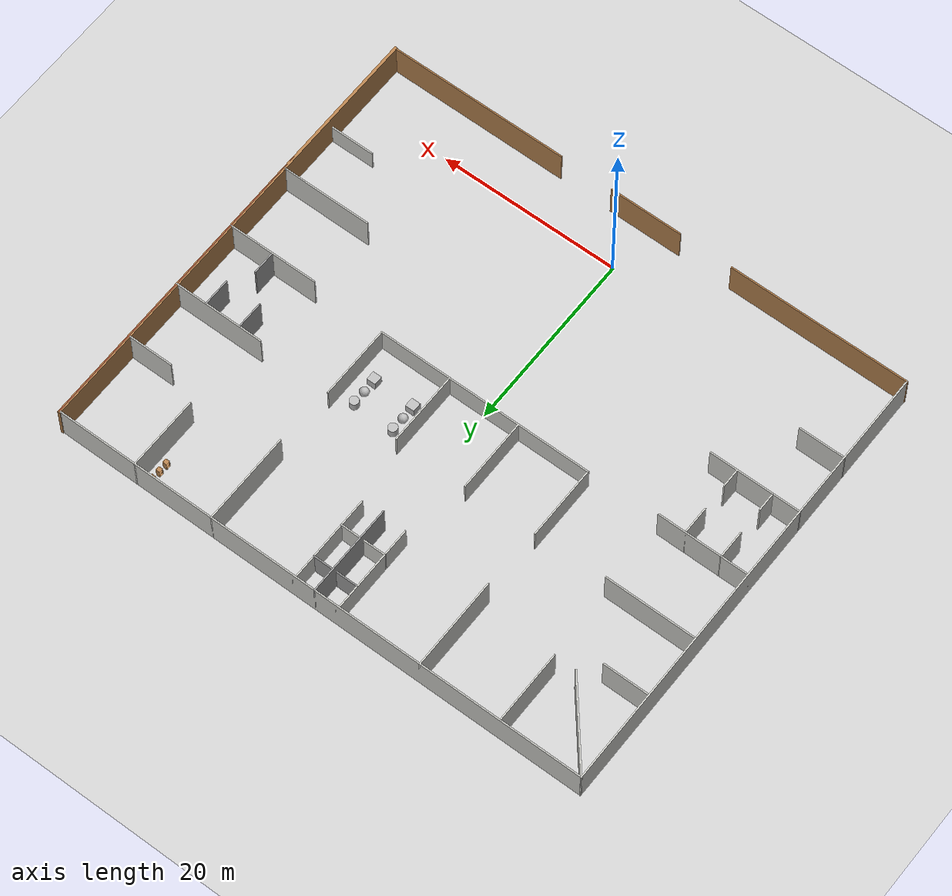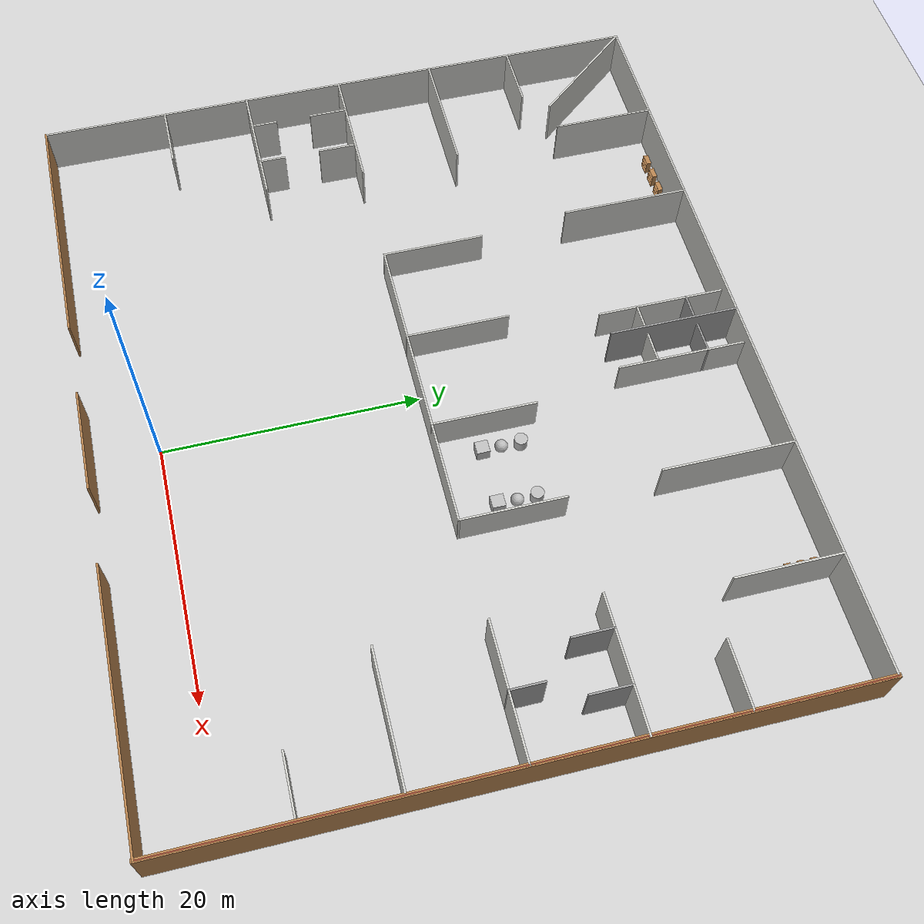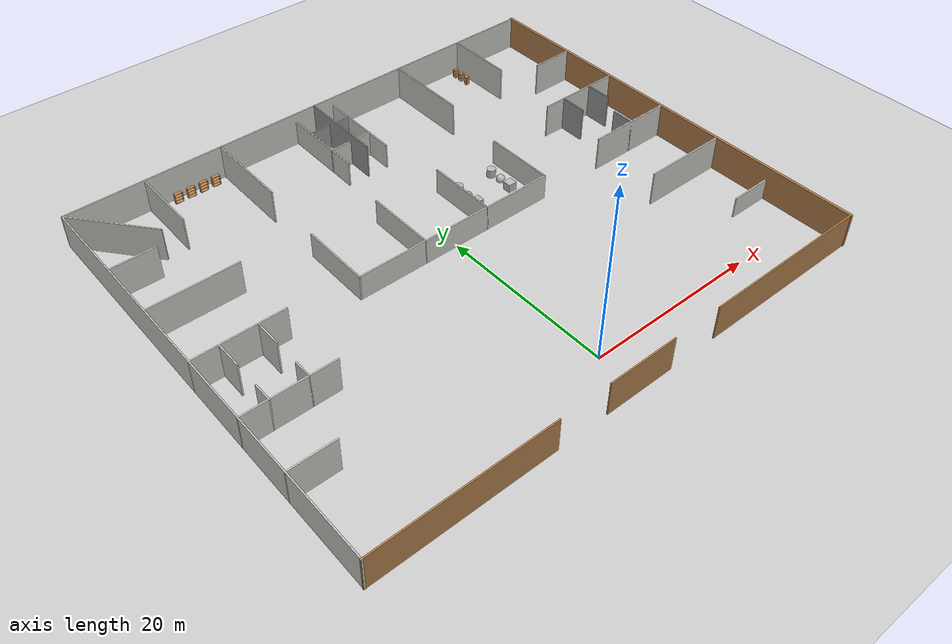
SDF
<sdf version="1.7">
 <world name="default">
  <model name="ground_plane">
   <static>1</static>
   <link name="link">
    <collision name="collision">
     <geometry><plane><normal>0 0 1</normal><size>100 100</size></plane></geometry>
     <surface>
      <contact><collide_bitmask>65535</collide_bitmask></contact>
      <friction><ode><mu>100</mu><mu2>50</mu2></ode></friction>
     </surface>
    </collision>
    <visual name="visual">
     <cast_shadows>0</cast_shadows>
     <geometry><plane><normal>0 0 1</normal><size>100 100</size></plane></geometry>
     <material>
      <script><uri>file://media/materials/scripts/gazebo.material</uri><name>Gazebo/Grey</name></script>
     </material>
    </visual>
   </link>
  </model>
  <model name="demo03">
   <pose>0 20 0 0 -0 0</pose>
   <link name="Wall_0">
    <collision name="Wall_0_Collision">
     <geometry><box><size>8.14 0.14 4</size></box></geometry>
     <pose>0 0 2 0 -0 0</pose>
    </collision>
    <visual name="Wall_0_Visual">
     <pose>0 0 2 0 -0 0</pose>
     <geometry><box><size>8.14 0.14 4</size></box></geometry>
     <material>
      <script><uri>file://media/materials/scripts/gazebo.material</uri><name>Gazebo/CeilingTiled</name></script>
      <ambient>1 1 1 1</ambient>
     </material>
     <meta><layer>0</layer></meta>
    </visual>
    <pose>-20.9847 20.9847 0 0 -0 -1.5708</pose>
   </link>
   <link name="Wall_12">
    <collision name="Wall_12_Collision">
     <geometry><box><size>10.15 0.15 3</size></box></geometry>
     <pose>0 0 1.5 0 -0 0</pose>
    </collision>
    <visual name="Wall_12_Visual">
     <pose>0 0 1.5 0 -0 0</pose>
     <geometry><box><size>10.15 0.15 3</size></box></geometry>
     <material>
      <script><uri>file://media/materials/scripts/gazebo.material</uri><name>Gazebo/CeilingTiled</name></script>
      <ambient>1 1 1 1</ambient>
     </material>
     <meta><layer>0</layer></meta>
    </visual>
    <pose>-2.48471 19.9847 0 0 -0 1.5708</pose>
   </link>
   <link name="Wall_14">
    <collision name="Wall_14_Collision">
     <geometry><box><size>10.15 0.15 3</size></box></geometry>
     <pose>0 0 1.5 0 -0 0</pose>
    </collision>
    <visual name="Wall_14_Visual">
     <pose>0 0 1.5 0 -0 0</pose>
     <geometry><box><size>10.15 0.15 3</size></box></geometry>
     <material>
      <script><uri>file://media/materials/scripts/gazebo.material</uri><name>Gazebo/CeilingTiled</name></script>
      <ambient>1 1 1 1</ambient>
     </material>
     <meta><layer>0</layer></meta>
    </visual>
    <pose>2.51529 19.9847 0 0 -0 1.5708</pose>
   </link>
   <link name="Wall_16">
    <collision name="Wall_16_Collision">
     <geometry><box><size>5.15 0.15 3</size></box></geometry>
     <pose>0 0 1.5 0 -0 0</pose>
    </collision>
    <visual name="Wall_16_Visual">
     <pose>0 0 1.5 0 -0 0</pose>
     <geometry><box><size>5.15 0.15 3</size></box></geometry>
     <material>
      <script><uri>file://media/materials/scripts/gazebo.material</uri><name>Gazebo/Grey</name></script>
      <ambient>1 1 1 1</ambient>
     </material>
     <meta><layer>0</layer></meta>
    </visual>
    <pose>0.015289 21.9847 0 0 -0 0</pose>
   </link>
   <link name="Wall_18">
    <collision name="Wall_18_Collision">
     <geometry><box><size>5.15 0.15 3</size></box></geometry>
     <pose>0 0 1.5 0 -0 0</pose>
    </collision>
    <visual name="Wall_18_Visual">
     <pose>0 0 1.5 0 -0 0</pose>
     <geometry><box><size>5.15 0.15 3</size></box></geometry>
     <material>
      <script><uri>file://media/materials/scripts/gazebo.material</uri><name>Gazebo/CeilingTiled</name></script>
      <ambient>1 1 1 1</ambient>
     </material>
     <meta><layer>0</layer></meta>
    </visual>
    <pose>0.015289 17.9847 0 0 -0 0</pose>
   </link>
   <link name="Wall_2">
    <collision name="Wall_2_Collision">
     <geometry><box><size>10.15 0.15 4</size></box></geometry>
     <pose>0 0 2 0 -0 0</pose>
    </collision>
    <visual name="Wall_2_Visual">
     <pose>0 0 2 0 -0 0</pose>
     <geometry><box><size>10.15 0.15 4</size></box></geometry>
     <material>
      <script><uri>file://media/materials/scripts/gazebo.material</uri><name>Gazebo/CeilingTiled</name></script>
      <ambient>1 1 1 1</ambient>
     </material>
     <meta><layer>0</layer></meta>
    </visual>
    <pose>-11.9847 19.9847 0 0 -0 -1.5708</pose>
   </link>
   <link name="Wall_20">
    <collision name="Wall_20_Collision">
     <geometry><box><size>5.15 0.15 4</size></box></geometry>
     <pose>0 0 2 0 -0 0</pose>
    </collision>
    <visual name="Wall_20_Visual">
     <pose>0 0 2 0 -0 0</pose>
     <geometry><box><size>5.15 0.15 4</size></box></geometry>
     <material>
      <script><uri>file://media/materials/scripts/gazebo.material</uri><name>Gazebo/CeilingTiled</name></script>
      <ambient>1 1 1 1</ambient>
     </material>
     <meta><layer>0</layer></meta>
    </visual>
    <pose>-27.4847 14.9847 0 0 -0 0</pose>
   </link>
   <link name="Wall_22">
    <collision name="Wall_22_Collision">
     <geometry><box><size>5.15 0.15 4</size></box></geometry>
     <pose>0 0 2 0 -0 0</pose>
    </collision>
    <visual name="Wall_22_Visual">
     <pose>0 0 2 0 -0 0</pose>
     <geometry><box><size>5.15 0.15 4</size></box></geometry>
     <material>
      <script><uri>file://media/materials/scripts/gazebo.material</uri><name>Gazebo/CeilingTiled</name></script>
      <ambient>1 1 1 1</ambient>
     </material>
     <meta><layer>0</layer></meta>
    </visual>
    <pose>27.5153 14.9847 0 0 -0 0</pose>
   </link>
   <link name="Wall_24">
    <collision name="Wall_24_Collision">
     <geometry><box><size>10.15 0.15 4</size></box></geometry>
     <pose>0 0 2 0 -0 0</pose>
    </collision>
    <visual name="Wall_24_Visual">
     <pose>0 0 2 0 -0 0</pose>
     <geometry><box><size>10.15 0.15 4</size></box></geometry>
     <material>
      <script><uri>file://media/materials/scripts/gazebo.material</uri><name>Gazebo/CeilingTiled</name></script>
      <ambient>1 1 1 1</ambient>
     </material>
     <meta><layer>0</layer></meta>
    </visual>
    <pose>-24.9847 7.98471 0 0 -0 0</pose>
   </link>
   <link name="Wall_26">
    <collision name="Wall_26_Collision">
     <geometry><box><size>10.15 0.15 4</size></box></geometry>
     <pose>0 0 2 0 -0 0</pose>
    </collision>
    <visual name="Wall_26_Visual">
     <pose>0 0 2 0 -0 0</pose>
     <geometry><box><size>10.15 0.15 4</size></box></geometry>
     <material>
      <script><uri>file://media/materials/scripts/gazebo.material</uri><name>Gazebo/CeilingTiled</name></script>
      <ambient>1 1 1 1</ambient>
     </material>
     <meta><layer>0</layer></meta>
    </visual>
    <pose>-24.9847 -0.015289 0 0 -0 0</pose>
   </link>
   <link name="Wall_28">
    <collision name="Wall_28_Collision">
     <geometry><box><size>10.15 0.15 4</size></box></geometry>
     <pose>0 0 2 0 -0 0</pose>
    </collision>
    <visual name="Wall_28_Visual">
     <pose>0 0 2 0 -0 0</pose>
     <geometry><box><size>10.15 0.15 4</size></box></geometry>
     <material>
      <script><uri>file://media/materials/scripts/gazebo.material</uri><name>Gazebo/CeilingTiled</name></script>
      <ambient>1 1 1 1</ambient>
     </material>
     <meta><layer>0</layer></meta>
    </visual>
    <pose>-24.9847 -8.01529 0 0 -0 0</pose>
   </link>
   <link name="Wall_30">
    <collision name="Wall_30_Collision">
     <geometry><box><size>5.15 0.15 4</size></box></geometry>
     <pose>0 0 2 0 -0 0</pose>
    </collision>
    <visual name="Wall_30_Visual">
     <pose>0 0 2 0 -0 0</pose>
     <geometry><box><size>5.15 0.15 4</size></box></geometry>
     <material>
      <script><uri>file://media/materials/scripts/gazebo.material</uri><name>Gazebo/CeilingTiled</name></script>
      <ambient>1 1 1 1</ambient>
     </material>
     <meta><layer>0</layer></meta>
    </visual>
    <pose>-27.4847 -15.0153 0 0 -0 0</pose>
   </link>
   <link name="Wall_32">
    <collision name="Wall_32_Collision">
     <geometry><box><size>10.15 0.15 4</size></box></geometry>
     <pose>0 0 2 0 -0 0</pose>
    </collision>
    <visual name="Wall_32_Visual">
     <pose>0 0 2 0 -0 0</pose>
     <geometry><box><size>10.15 0.15 4</size></box></geometry>
     <material>
      <script><uri>file://media/materials/scripts/gazebo.material</uri><name>Gazebo/CeilingTiled</name></script>
      <ambient>1 1 1 1</ambient>
     </material>
     <meta><layer>0</layer></meta>
    </visual>
    <pose>25.0153 7.98471 0 0 -0 0</pose>
   </link>
   <link name="Wall_34">
    <collision name="Wall_34_Collision">
     <geometry><box><size>10.15 0.15 4</size></box></geometry>
     <pose>0 0 2 0 -0 0</pose>
    </collision>
    <visual name="Wall_34_Visual">
     <pose>0 0 2 0 -0 0</pose>
     <geometry><box><size>10.15 0.15 4</size></box></geometry>
     <material>
      <script><uri>file://media/materials/scripts/gazebo.material</uri><name>Gazebo/CeilingTiled</name></script>
      <ambient>1 1 1 1</ambient>
     </material>
     <meta><layer>0</layer></meta>
    </visual>
    <pose>25.0153 -0.015289 0 0 -0 0</pose>
   </link>
   <link name="Wall_36">
    <collision name="Wall_36_Collision">
     <geometry><box><size>10.15 0.15 4</size></box></geometry>
     <pose>0 0 2 0 -0 0</pose>
    </collision>
    <visual name="Wall_36_Visual">
     <pose>0 0 2 0 -0 0</pose>
     <geometry><box><size>10.15 0.15 4</size></box></geometry>
     <material>
      <script><uri>file://media/materials/scripts/gazebo.material</uri><name>Gazebo/CeilingTiled</name></script>
      <ambient>1 1 1 1</ambient>
     </material>
     <meta><layer>0</layer></meta>
    </visual>
    <pose>25.0153 -8.01529 0 0 -0 0</pose>
   </link>
   <link name="Wall_38">
    <collision name="Wall_38_Collision">
     <geometry><box><size>5.15 0.15 2.5</size></box></geometry>
     <pose>0 0 1.25 0 -0 0</pose>
    </collision>
    <visual name="Wall_38_Visual">
     <pose>0 0 1.25 0 -0 0</pose>
     <geometry><box><size>5.15 0.15 2.5</size></box></geometry>
     <material>
      <script><uri>file://media/materials/scripts/gazebo.material</uri><name>Gazebo/CeilingTiled</name></script>
      <ambient>1 1 1 1</ambient>
     </material>
     <meta><layer>0</layer></meta>
    </visual>
    <pose>27.5153 -15.0153 0 0 -0 0</pose>
   </link>
   <link name="Wall_40">
    <collision name="Wall_40_Collision">
     <geometry><box><size>3.15 0.15 4</size></box></geometry>
     <pose>0 0 2 0 -0 0</pose>
    </collision>
    <visual name="Wall_40_Visual">
     <pose>0 0 2 0 -0 0</pose>
     <geometry><box><size>3.15 0.15 4</size></box></geometry>
     <material>
      <script><uri>file://media/materials/scripts/gazebo.material</uri><name>Gazebo/Grey</name></script>
      <ambient>1 1 1 1</ambient>
     </material>
     <meta><layer>0</layer></meta>
    </visual>
    <pose>26.5153 6.48471 0 0 -0 -1.5708</pose>
   </link>
   <link name="Wall_42">
    <collision name="Wall_42_Collision">
     <geometry><box><size>3.15 0.15 4</size></box></geometry>
     <pose>0 0 2 0 -0 0</pose>
    </collision>
    <visual name="Wall_42_Visual">
     <pose>0 0 2 0 -0 0</pose>
     <geometry><box><size>3.15 0.15 4</size></box></geometry>
     <material>
      <script><uri>file://media/materials/scripts/gazebo.material</uri><name>Gazebo/Grey</name></script>
      <ambient>1 1 1 1</ambient>
     </material>
     <meta><layer>0</layer></meta>
    </visual>
    <pose>22.5153 6.48471 0 0 -0 -1.5708</pose>
   </link>
   <link name="Wall_44">
    <collision name="Wall_44_Collision">
     <geometry><box><size>2.65 0.15 4</size></box></geometry>
     <pose>0 0 2 0 -0 0</pose>
    </collision>
    <visual name="Wall_44_Visual">
     <pose>0 0 2 0 -0 0</pose>
     <geometry><box><size>2.65 0.15 4</size></box></geometry>
     <material>
      <script><uri>file://media/materials/scripts/gazebo.material</uri><name>Gazebo/Grey</name></script>
      <ambient>1 1 1 1</ambient>
     </material>
     <meta><layer>0</layer></meta>
    </visual>
    <pose>25.0153 1.23471 0 0 -0 1.5708</pose>
   </link>
   <link name="Wall_46">
    <collision name="Wall_46_Collision">
     <geometry><box><size>3.15 0.15 4</size></box></geometry>
     <pose>0 0 2 0 -0 0</pose>
    </collision>
    <visual name="Wall_46_Visual">
     <pose>0 0 2 0 -0 0</pose>
     <geometry><box><size>3.15 0.15 4</size></box></geometry>
     <material>
      <script><uri>file://media/materials/scripts/gazebo.material</uri><name>Gazebo/CeilingTiled</name></script>
      <ambient>1 1 1 1</ambient>
     </material>
     <meta><layer>0</layer></meta>
    </visual>
    <pose>-26.9847 -1.51529 0 0 -0 -1.5708</pose>
   </link>
   <link name="Wall_48">
    <collision name="Wall_48_Collision">
     <geometry><box><size>3.15 0.15 4</size></box></geometry>
     <pose>0 0 2 0 -0 0</pose>
    </collision>
    <visual name="Wall_48_Visual">
     <pose>0 0 2 0 -0 0</pose>
     <geometry><box><size>3.15 0.15 4</size></box></geometry>
     <material>
      <script><uri>file://media/materials/scripts/gazebo.material</uri><name>Gazebo/CeilingTiled</name></script>
      <ambient>1 1 1 1</ambient>
     </material>
     <meta><layer>0</layer></meta>
    </visual>
    <pose>-22.9847 -1.51529 0 0 -0 -1.5708</pose>
   </link>
   <link name="Wall_5">
    <collision name="Wall_5_Collision">
     <geometry><box><size>10.15 0.15 4</size></box></geometry>
     <pose>0 0 2 0 -0 0</pose>
    </collision>
    <visual name="Wall_5_Visual">
     <pose>0 0 2 0 -0 0</pose>
     <geometry><box><size>10.15 0.15 4</size></box></geometry>
     <material>
      <script><uri>file://media/materials/scripts/gazebo.material</uri><name>Gazebo/Grey</name></script>
      <ambient>1 1 1 1</ambient>
     </material>
     <meta><layer>0</layer></meta>
    </visual>
    <pose>0.015289 19.9847 0 0 -0 -1.5708</pose>
   </link>
   <link name="Wall_50">
    <collision name="Wall_50_Collision">
     <geometry><box><size>2.15 0.15 4</size></box></geometry>
     <pose>0 0 2 0 -0 0</pose>
    </collision>
    <visual name="Wall_50_Visual">
     <pose>0 0 2 0 -0 0</pose>
     <geometry><box><size>2.15 0.15 4</size></box></geometry>
     <material>
      <script><uri>file://media/materials/scripts/gazebo.material</uri><name>Gazebo/CeilingTiled</name></script>
      <ambient>1 1 1 1</ambient>
     </material>
     <meta><layer>0</layer></meta>
    </visual>
    <pose>-26.9847 -7.01529 0 0 -0 1.5708</pose>
   </link>
   <link name="Wall_52">
    <collision name="Wall_52_Collision">
     <geometry><box><size>2.15 0.15 4</size></box></geometry>
     <pose>0 0 2 0 -0 0</pose>
    </collision>
    <visual name="Wall_52_Visual">
     <pose>0 0 2 0 -0 0</pose>
     <geometry><box><size>2.15 0.15 4</size></box></geometry>
     <material>
      <script><uri>file://media/materials/scripts/gazebo.material</uri><name>Gazebo/CeilingTiled</name></script>
      <ambient>1 1 1 1</ambient>
     </material>
     <meta><layer>0</layer></meta>
    </visual>
    <pose>-22.9847 -7.01529 0 0 -0 1.5708</pose>
   </link>
   <link name="Wall_54">
    <collision name="Wall_54_Collision">
     <geometry><box><size>10.5211 0.15 4</size></box></geometry>
     <pose>0 0 2 0 -0 0</pose>
    </collision>
    <visual name="Wall_54_Visual">
     <pose>0 0 2 0 -0 0</pose>
     <geometry><box><size>10.5211 0.15 4</size></box></geometry>
     <material>
      <script><uri>file://media/materials/scripts/gazebo.material</uri><name>Gazebo/CeilingTiled</name></script>
      <ambient>1 1 1 1</ambient>
     </material>
     <meta><layer>0</layer></meta>
    </visual>
    <pose>-26.6847 20.9847 0 0 -0 -0.880996</pose>
   </link>
   <link name="Wall_61">
    <collision name="Wall_61_Collision">
     <geometry><box><size>8.15 0.15 3</size></box></geometry>
     <pose>0 0 1.5 0 -0 0</pose>
    </collision>
    <visual name="Wall_61_Visual">
     <pose>0 0 1.5 0 -0 0</pose>
     <geometry><box><size>8.15 0.15 3</size></box></geometry>
     <material>
      <script><uri>file://media/materials/scripts/gazebo.material</uri><name>Gazebo/CeilingTiled</name></script>
      <ambient>1 1 1 1</ambient>
     </material>
     <meta><layer>0</layer></meta>
    </visual>
    <pose>12.0153 3.98471 0 0 -0 -1.5708</pose>
   </link>
   <link name="Wall_63">
    <collision name="Wall_63_Collision">
     <geometry><box><size>8.15 0.15 3</size></box></geometry>
     <pose>0 0 1.5 0 -0 0</pose>
    </collision>
    <visual name="Wall_63_Visual">
     <pose>0 0 1.5 0 -0 0</pose>
     <geometry><box><size>8.15 0.15 3</size></box></geometry>
     <material>
      <script><uri>file://media/materials/scripts/gazebo.material</uri><name>Gazebo/CeilingTiled</name></script>
      <ambient>1 1 1 1</ambient>
     </material>
     <meta><layer>0</layer></meta>
    </visual>
    <pose>-11.9847 3.98471 0 0 -0 -1.5708</pose>
   </link>
   <link name="Wall_65">
    <collision name="Wall_65_Collision">
     <geometry><box><size>8.15 0.15 3</size></box></geometry>
     <pose>0 0 1.5 0 -0 0</pose>
    </collision>
    <visual name="Wall_65_Visual">
     <pose>0 0 1.5 0 -0 0</pose>
     <geometry><box><size>8.15 0.15 3</size></box></geometry>
     <material>
      <script><uri>file://media/materials/scripts/gazebo.material</uri><name>Gazebo/CeilingTiled</name></script>
      <ambient>1 1 1 1</ambient>
     </material>
     <meta><layer>0</layer></meta>
    </visual>
    <pose>4.01529 3.98471 0 0 -0 -1.5708</pose>
   </link>
   <link name="Wall_67">
    <collision name="Wall_67_Collision">
     <geometry><box><size>8.15 0.15 3</size></box></geometry>
     <pose>0 0 1.5 0 -0 0</pose>
    </collision>
    <visual name="Wall_67_Visual">
     <pose>0 0 1.5 0 -0 0</pose>
     <geometry><box><size>8.15 0.15 3</size></box></geometry>
     <material>
      <script><uri>file://media/materials/scripts/gazebo.material</uri><name>Gazebo/CeilingTiled</name></script>
      <ambient>1 1 1 1</ambient>
     </material>
     <meta><layer>0</layer></meta>
    </visual>
    <pose>-3.98471 3.98471 0 0 -0 -1.5708</pose>
   </link>
   <link name="Wall_69">
    <collision name="Wall_69_Collision">
     <geometry><box><size>24.15 0.15 3</size></box></geometry>
     <pose>0 0 1.5 0 -0 0</pose>
    </collision>
    <visual name="Wall_69_Visual">
     <pose>0 0 1.5 0 -0 0</pose>
     <geometry><box><size>24.15 0.15 3</size></box></geometry>
     <material>
      <script><uri>file://media/materials/scripts/gazebo.material</uri><name>Gazebo/CeilingTiled</name></script>
      <ambient>1 1 1 1</ambient>
     </material>
     <meta><layer>0</layer></meta>
    </visual>
    <pose>0.015289 -0.015289 0 0 -0 0</pose>
   </link>
   <link name="Wall_7">
    <collision name="Wall_7_Collision">
     <geometry><box><size>10.15 0.15 4</size></box></geometry>
     <pose>0 0 2 0 -0 0</pose>
    </collision>
    <visual name="Wall_7_Visual">
     <pose>0 0 2 0 -0 0</pose>
     <geometry><box><size>10.15 0.15 4</size></box></geometry>
     <material>
      <script><uri>file://media/materials/scripts/gazebo.material</uri><name>Gazebo/CeilingTiled</name></script>
      <ambient>1 1 1 1</ambient>
     </material>
     <meta><layer>0</layer></meta>
    </visual>
    <pose>12.0153 19.9847 0 0 -0 -1.5708</pose>
   </link>
   <link name="Wall_71">
    <collision name="Wall_71_Collision">
     <geometry><box><size>50.15 0.15 4</size></box></geometry>
     <pose>0 0 2 0 -0 0</pose>
    </collision>
    <visual name="Wall_71_Visual">
     <pose>0 0 2 0 -0 0</pose>
     <geometry><box><size>50.15 0.15 4</size></box></geometry>
     <material>
      <script><uri>file://media/materials/scripts/gazebo.material</uri><name>Gazebo/CeilingTiled</name></script>
      <ambient>0.560784 0.34902 0.00784314 1</ambient>
     </material>
     <meta><layer>0</layer></meta>
    </visual>
    <pose>-29.9847 -0.015289 0 0 -0 1.5708</pose>
   </link>
   <link name="Wall_73">
    <collision name="Wall_73_Collision">
     <geometry><box><size>60.15 0.15 4</size></box></geometry>
     <pose>0 0 2 0 -0 0</pose>
    </collision>
    <visual name="Wall_73_Visual">
     <pose>0 0 2 0 -0 0</pose>
     <geometry><box><size>60.15 0.15 4</size></box></geometry>
     <material>
      <script><uri>file://media/materials/scripts/gazebo.material</uri><name>Gazebo/CeilingTiled</name></script>
      <ambient>0.560784 0.34902 0.00784314 1</ambient>
     </material>
     <meta><layer>0</layer></meta>
    </visual>
    <pose>0.015289 24.9847 0 0 -0 0</pose>
   </link>
   <link name="Wall_75">
    <collision name="Wall_75_Collision">
     <geometry><box><size>50.15 0.15 4</size></box></geometry>
     <pose>0 0 2 0 -0 0</pose>
    </collision>
    <visual name="Wall_75_Visual">
     <pose>0 0 2 0 -0 0</pose>
     <geometry><box><size>50.15 0.15 4</size></box></geometry>
     <material>
      <script><uri>file://media/materials/scripts/gazebo.material</uri><name>Gazebo/Bricks</name></script>
      <ambient>1 1 1 1</ambient>
     </material>
     <meta><layer>0</layer></meta>
    </visual>
    <pose>30.0153 -0.015289 0 0 -0 -1.5708</pose>
   </link>
   <link name="Wall_9">
    <collision name="Wall_9_Collision">
     <geometry><box><size>8.15 0.15 4</size></box></geometry>
     <pose>0 0 2 0 -0 0</pose>
    </collision>
    <visual name="Wall_9_Visual">
     <pose>0 0 2 0 -0 0</pose>
     <geometry><box><size>8.15 0.15 4</size></box></geometry>
     <material>
      <script><uri>file://media/materials/scripts/gazebo.material</uri><name>Gazebo/CeilingTiled</name></script>
      <ambient>1 1 1 1</ambient>
     </material>
     <meta><layer>0</layer></meta>
    </visual>
    <pose>21.0153 20.9847 0 0 -0 -1.5708</pose>
   </link>
   <static>1</static>
  </model>
  <model name="bookshelf_clone_clone_clone_6">
   <static>1</static>
   <link name="link">
    <inertial><mass>1</mass></inertial>
    <collision name="back">
     <pose>0 0.005 0.6 0 -0 0</pose>
     <geometry><box><size>0.9 0.01 1.2</size></box></geometry>
    </collision>
    <visual name="visual1">
     <pose>0 0.005 0.6 0 -0 0</pose>
     <geometry><box><size>0.9 0.01 1.2</size></box></geometry>
     <material>
      <script><uri>file://media/materials/scripts/gazebo.material</uri><name>Gazebo/Wood</name></script>
     </material>
    </visual>
    <collision name="left_side">
     <pose>0.45 -0.195 0.6 0 -0 0</pose>
     <geometry><box><size>0.02 0.4 1.2</size></box></geometry>
    </collision>
    <visual name="visual2">
     <pose>0.45 -0.195 0.6 0 -0 0</pose>
     <geometry><box><size>0.02 0.4 1.2</size></box></geometry>
     <material>
      <script><uri>file://media/materials/scripts/gazebo.material</uri><name>Gazebo/Wood</name></script>
     </material>
    </visual>
    <collision name="right_side">
     <pose>-0.45 -0.195 0.6 0 -0 0</pose>
     <geometry><box><size>0.02 0.4 1.2</size></box></geometry>
    </collision>
    <visual name="visual3">
     <pose>-0.45 -0.195 0.6 0 -0 0</pose>
     <geometry><box><size>0.02 0.4 1.2</size></box></geometry>
     <material>
      <script><uri>file://media/materials/scripts/gazebo.material</uri><name>Gazebo/Wood</name></script>
     </material>
    </visual>
    <collision name="bottom">
     <pose>0 -0.195 0.03 0 -0 0</pose>
     <geometry><box><size>0.88 0.4 0.06</size></box></geometry>
    </collision>
    <visual name="visual4">
     <pose>0 -0.195 0.03 0 -0 0</pose>
     <geometry><box><size>0.88 0.4 0.06</size></box></geometry>
     <material>
      <script><uri>file://media/materials/scripts/gazebo.material</uri><name>Gazebo/Wood</name></script>
     </material>
    </visual>
    <collision name="top">
     <pose>0 -0.195 1.19 0 -0 0</pose>
     <geometry><box><size>0.88 0.4 0.02</size></box></geometry>
    </collision>
    <visual name="visual5">
     <pose>0 -0.195 1.19 0 -0 0</pose>
     <geometry><box><size>0.88 0.4 0.02</size></box></geometry>
     <material>
      <script><uri>file://media/materials/scripts/gazebo.material</uri><name>Gazebo/Wood</name></script>
     </material>
    </visual>
    <collision name="low_shelf">
     <pose>0 -0.195 0.43 0 -0 0</pose>
     <geometry><box><size>0.88 0.4 0.02</size></box></geometry>
    </collision>
    <visual name="visual6">
     <pose>0 -0.195 0.43 0 -0 0</pose>
     <geometry><box><size>0.88 0.4 0.02</size></box></geometry>
     <material>
      <script><uri>file://media/materials/scripts/gazebo.material</uri><name>Gazebo/Wood</name></script>
     </material>
    </visual>
    <collision name="high_shelf">
     <pose>0 -0.195 0.8 0 -0 0</pose>
     <geometry><box><size>0.88 0.4 0.02</size></box></geometry>
    </collision>
    <visual name="visual7">
     <pose>0 -0.195 0.8 0 -0 0</pose>
     <geometry><box><size>0.88 0.4 0.02</size></box></geometry>
     <material>
      <script><uri>file://media/materials/scripts/gazebo.material</uri><name>Gazebo/Wood</name></script>
     </material>
    </visual>
   </link>
   <pose>-18 44.5 0 0 -0 0</pose>
  </model>
  <model name="bookshelf_clone_clone_clone_7">
   <static>1</static>
   <link name="link">
    <inertial><mass>1</mass></inertial>
    <collision name="back">
     <pose>0 0.005 0.6 0 -0 0</pose>
     <geometry><box><size>0.9 0.01 1.2</size></box></geometry>
    </collision>
    <visual name="visual1">
     <pose>0 0.005 0.6 0 -0 0</pose>
     <geometry><box><size>0.9 0.01 1.2</size></box></geometry>
     <material>
      <script><uri>file://media/materials/scripts/gazebo.material</uri><name>Gazebo/Wood</name></script>
     </material>
    </visual>
    <collision name="left_side">
     <pose>0.45 -0.195 0.6 0 -0 0</pose>
     <geometry><box><size>0.02 0.4 1.2</size></box></geometry>
    </collision>
    <visual name="visual2">
     <pose>0.45 -0.195 0.6 0 -0 0</pose>
     <geometry><box><size>0.02 0.4 1.2</size></box></geometry>
     <material>
      <script><uri>file://media/materials/scripts/gazebo.material</uri><name>Gazebo/Wood</name></script>
     </material>
    </visual>
    <collision name="right_side">
     <pose>-0.45 -0.195 0.6 0 -0 0</pose>
     <geometry><box><size>0.02 0.4 1.2</size></box></geometry>
    </collision>
    <visual name="visual3">
     <pose>-0.45 -0.195 0.6 0 -0 0</pose>
     <geometry><box><size>0.02 0.4 1.2</size></box></geometry>
     <material>
      <script><uri>file://media/materials/scripts/gazebo.material</uri><name>Gazebo/Wood</name></script>
     </material>
    </visual>
    <collision name="bottom">
     <pose>0 -0.195 0.03 0 -0 0</pose>
     <geometry><box><size>0.88 0.4 0.06</size></box></geometry>
    </collision>
    <visual name="visual4">
     <pose>0 -0.195 0.03 0 -0 0</pose>
     <geometry><box><size>0.88 0.4 0.06</size></box></geometry>
     <material>
      <script><uri>file://media/materials/scripts/gazebo.material</uri><name>Gazebo/Wood</name></script>
     </material>
    </visual>
    <collision name="top">
     <pose>0 -0.195 1.19 0 -0 0</pose>
     <geometry><box><size>0.88 0.4 0.02</size></box></geometry>
    </collision>
    <visual name="visual5">
     <pose>0 -0.195 1.19 0 -0 0</pose>
     <geometry><box><size>0.88 0.4 0.02</size></box></geometry>
     <material>
      <script><uri>file://media/materials/scripts/gazebo.material</uri><name>Gazebo/Wood</name></script>
     </material>
    </visual>
    <collision name="low_shelf">
     <pose>0 -0.195 0.43 0 -0 0</pose>
     <geometry><box><size>0.88 0.4 0.02</size></box></geometry>
    </collision>
    <visual name="visual6">
     <pose>0 -0.195 0.43 0 -0 0</pose>
     <geometry><box><size>0.88 0.4 0.02</size></box></geometry>
     <material>
      <script><uri>file://media/materials/scripts/gazebo.material</uri><name>Gazebo/Wood</name></script>
     </material>
    </visual>
    <collision name="high_shelf">
     <pose>0 -0.195 0.8 0 -0 0</pose>
     <geometry><box><size>0.88 0.4 0.02</size></box></geometry>
    </collision>
    <visual name="visual7">
     <pose>0 -0.195 0.8 0 -0 0</pose>
     <geometry><box><size>0.88 0.4 0.02</size></box></geometry>
     <material>
      <script><uri>file://media/materials/scripts/gazebo.material</uri><name>Gazebo/Wood</name></script>
     </material>
    </visual>
   </link>
   <pose>-16.5 44.5 0 0 -0 0</pose>
  </model>
  <model name="bookshelf_clone_clone_clone_8">
   <static>1</static>
   <link name="link">
    <inertial><mass>1</mass></inertial>
    <collision name="back">
     <pose>0 0.005 0.6 0 -0 0</pose>
     <geometry><box><size>0.9 0.01 1.2</size></box></geometry>
    </collision>
    <visual name="visual1">
     <pose>0 0.005 0.6 0 -0 0</pose>
     <geometry><box><size>0.9 0.01 1.2</size></box></geometry>
     <material>
      <script><uri>file://media/materials/scripts/gazebo.material</uri><name>Gazebo/Wood</name></script>
     </material>
    </visual>
    <collision name="left_side">
     <pose>0.45 -0.195 0.6 0 -0 0</pose>
     <geometry><box><size>0.02 0.4 1.2</size></box></geometry>
    </collision>
    <visual name="visual2">
     <pose>0.45 -0.195 0.6 0 -0 0</pose>
     <geometry><box><size>0.02 0.4 1.2</size></box></geometry>
     <material>
      <script><uri>file://media/materials/scripts/gazebo.material</uri><name>Gazebo/Wood</name></script>
     </material>
    </visual>
    <collision name="right_side">
     <pose>-0.45 -0.195 0.6 0 -0 0</pose>
     <geometry><box><size>0.02 0.4 1.2</size></box></geometry>
    </collision>
    <visual name="visual3">
     <pose>-0.45 -0.195 0.6 0 -0 0</pose>
     <geometry><box><size>0.02 0.4 1.2</size></box></geometry>
     <material>
      <script><uri>file://media/materials/scripts/gazebo.material</uri><name>Gazebo/Wood</name></script>
     </material>
    </visual>
    <collision name="bottom">
     <pose>0 -0.195 0.03 0 -0 0</pose>
     <geometry><box><size>0.88 0.4 0.06</size></box></geometry>
    </collision>
    <visual name="visual4">
     <pose>0 -0.195 0.03 0 -0 0</pose>
     <geometry><box><size>0.88 0.4 0.06</size></box></geometry>
     <material>
      <script><uri>file://media/materials/scripts/gazebo.material</uri><name>Gazebo/Wood</name></script>
     </material>
    </visual>
    <collision name="top">
     <pose>0 -0.195 1.19 0 -0 0</pose>
     <geometry><box><size>0.88 0.4 0.02</size></box></geometry>
    </collision>
    <visual name="visual5">
     <pose>0 -0.195 1.19 0 -0 0</pose>
     <geometry><box><size>0.88 0.4 0.02</size></box></geometry>
     <material>
      <script><uri>file://media/materials/scripts/gazebo.material</uri><name>Gazebo/Wood</name></script>
     </material>
    </visual>
    <collision name="low_shelf">
     <pose>0 -0.195 0.43 0 -0 0</pose>
     <geometry><box><size>0.88 0.4 0.02</size></box></geometry>
    </collision>
    <visual name="visual6">
     <pose>0 -0.195 0.43 0 -0 0</pose>
     <geometry><box><size>0.88 0.4 0.02</size></box></geometry>
     <material>
      <script><uri>file://media/materials/scripts/gazebo.material</uri><name>Gazebo/Wood</name></script>
     </material>
    </visual>
    <collision name="high_shelf">
     <pose>0 -0.195 0.8 0 -0 0</pose>
     <geometry><box><size>0.88 0.4 0.02</size></box></geometry>
    </collision>
    <visual name="visual7">
     <pose>0 -0.195 0.8 0 -0 0</pose>
     <geometry><box><size>0.88 0.4 0.02</size></box></geometry>
     <material>
      <script><uri>file://media/materials/scripts/gazebo.material</uri><name>Gazebo/Wood</name></script>
     </material>
    </visual>
   </link>
   <pose>-15 44.5 0 0 -0 0</pose>
  </model>
  <model name="bookshelf_clone_clone_clone_9">
   <static>1</static>
   <link name="link">
    <inertial><mass>1</mass></inertial>
    <collision name="back">
     <pose>0 0.005 0.6 0 -0 0</pose>
     <geometry><box><size>0.9 0.01 1.2</size></box></geometry>
    </collision>
    <visual name="visual1">
     <pose>0 0.005 0.6 0 -0 0</pose>
     <geometry><box><size>0.9 0.01 1.2</size></box></geometry>
     <material>
      <script><uri>file://media/materials/scripts/gazebo.material</uri><name>Gazebo/Wood</name></script>
     </material>
    </visual>
    <collision name="left_side">
     <pose>0.45 -0.195 0.6 0 -0 0</pose>
     <geometry><box><size>0.02 0.4 1.2</size></box></geometry>
    </collision>
    <visual name="visual2">
     <pose>0.45 -0.195 0.6 0 -0 0</pose>
     <geometry><box><size>0.02 0.4 1.2</size></box></geometry>
     <material>
      <script><uri>file://media/materials/scripts/gazebo.material</uri><name>Gazebo/Wood</name></script>
     </material>
    </visual>
    <collision name="right_side">
     <pose>-0.45 -0.195 0.6 0 -0 0</pose>
     <geometry><box><size>0.02 0.4 1.2</size></box></geometry>
    </collision>
    <visual name="visual3">
     <pose>-0.45 -0.195 0.6 0 -0 0</pose>
     <geometry><box><size>0.02 0.4 1.2</size></box></geometry>
     <material>
      <script><uri>file://media/materials/scripts/gazebo.material</uri><name>Gazebo/Wood</name></script>
     </material>
    </visual>
    <collision name="bottom">
     <pose>0 -0.195 0.03 0 -0 0</pose>
     <geometry><box><size>0.88 0.4 0.06</size></box></geometry>
    </collision>
    <visual name="visual4">
     <pose>0 -0.195 0.03 0 -0 0</pose>
     <geometry><box><size>0.88 0.4 0.06</size></box></geometry>
     <material>
      <script><uri>file://media/materials/scripts/gazebo.material</uri><name>Gazebo/Wood</name></script>
     </material>
    </visual>
    <collision name="top">
     <pose>0 -0.195 1.19 0 -0 0</pose>
     <geometry><box><size>0.88 0.4 0.02</size></box></geometry>
    </collision>
    <visual name="visual5">
     <pose>0 -0.195 1.19 0 -0 0</pose>
     <geometry><box><size>0.88 0.4 0.02</size></box></geometry>
     <material>
      <script><uri>file://media/materials/scripts/gazebo.material</uri><name>Gazebo/Wood</name></script>
     </material>
    </visual>
    <collision name="low_shelf">
     <pose>0 -0.195 0.43 0 -0 0</pose>
     <geometry><box><size>0.88 0.4 0.02</size></box></geometry>
    </collision>
    <visual name="visual6">
     <pose>0 -0.195 0.43 0 -0 0</pose>
     <geometry><box><size>0.88 0.4 0.02</size></box></geometry>
     <material>
      <script><uri>file://media/materials/scripts/gazebo.material</uri><name>Gazebo/Wood</name></script>
     </material>
    </visual>
    <collision name="high_shelf">
     <pose>0 -0.195 0.8 0 -0 0</pose>
     <geometry><box><size>0.88 0.4 0.02</size></box></geometry>
    </collision>
    <visual name="visual7">
     <pose>0 -0.195 0.8 0 -0 0</pose>
     <geometry><box><size>0.88 0.4 0.02</size></box></geometry>
     <material>
      <script><uri>file://media/materials/scripts/gazebo.material</uri><name>Gazebo/Wood</name></script>
     </material>
    </visual>
   </link>
   <pose>-13.5 44.5 0 0 -0 0</pose>
  </model>
  <model name="cabinet_clone">
   <static>1</static>
   <link name="cabinet_bottom_plate">
    <inertial>
     <pose>0 0 -1 0 -0 0</pose>
     <inertia><ixx>2.05</ixx><ixy>0</ixy><ixz>0</ixz><iyy>2.05</iyy><iyz>0</iyz><izz>2.05</izz></inertia>
     <mass>25</mass>
    </inertial>
    <collision name="cabinet_bottom_plate_geom">
     <pose>0 0 0.01 0 -0 0</pose>
     <geometry><box><size>0.45 0.45 0.02</size></box></geometry>
    </collision>
    <visual name="cabinet_bottom_plate_geom_visual">
     <pose>0 0 0.01 0 -0 0</pose>
     <geometry><box><size>0.45 0.45 0.02</size></box></geometry>
     <material>
      <script><uri>file://media/materials/scripts/gazebo.material</uri><name>Gazebo/Wood</name></script>
     </material>
    </visual>
    <collision name="cabinet_bottom_plate_geom_cabinet_back_plate">
     <pose>0.235 0 0.51 0 -0 0</pose>
     <geometry><box><size>0.02 0.45 1.02</size></box></geometry>
    </collision>
    <visual name="cabinet_bottom_plate_geom_cabinet_back_plate_visual">
     <pose>0.235 0 0.51 0 -0 0</pose>
     <geometry><box><size>0.02 0.45 1.02</size></box></geometry>
     <material>
      <script><uri>file://media/materials/scripts/gazebo.material</uri><name>Gazebo/Wood</name></script>
     </material>
    </visual>
    <collision name="cabinet_bottom_plate_geom_cabinet_left_plate">
     <pose>0 0.235 0.51 0 -0 0</pose>
     <geometry><box><size>0.45 0.02 1.02</size></box></geometry>
    </collision>
    <visual name="cabinet_bottom_plate_geom_cabinet_left_plate_visual">
     <pose>0 0.235 0.51 0 -0 0</pose>
     <geometry><box><size>0.45 0.02 1.02</size></box></geometry>
     <material>
      <script><uri>file://media/materials/scripts/gazebo.material</uri><name>Gazebo/Wood</name></script>
     </material>
    </visual>
    <collision name="cabinet_bottom_plate_geom_cabinet_middle_plate">
     <pose>0 0 0.51 0 -0 0</pose>
     <geometry><box><size>0.45 0.45 0.02</size></box></geometry>
    </collision>
    <visual name="cabinet_bottom_plate_geom_cabinet_middle_plate_visual">
     <pose>0 0 0.51 0 -0 0</pose>
     <geometry><box><size>0.45 0.45 0.02</size></box></geometry>
     <material>
      <script><uri>file://media/materials/scripts/gazebo.material</uri><name>Gazebo/Wood</name></script>
     </material>
    </visual>
    <collision name="cabinet_bottom_plate_geom_cabinet_right_plate">
     <pose>0 -0.235 0.51 0 -0 0</pose>
     <geometry><box><size>0.45 0.02 1.02</size></box></geometry>
    </collision>
    <visual name="cabinet_bottom_plate_geom_cabinet_right_plate_visual">
     <pose>0 -0.235 0.51 0 -0 0</pose>
     <geometry><box><size>0.45 0.02 1.02</size></box></geometry>
     <material>
      <script><uri>file://media/materials/scripts/gazebo.material</uri><name>Gazebo/Wood</name></script>
     </material>
    </visual>
    <collision name="cabinet_bottom_plate_geom_cabinet_top_plate">
     <pose>0 0 1.01 0 -0 0</pose>
     <geometry><box><size>0.45 0.45 0.02</size></box></geometry>
    </collision>
    <visual name="cabinet_bottom_plate_geom_cabinet_top_plate_visual">
     <pose>0 0 1.01 0 -0 0</pose>
     <geometry><box><size>0.45 0.45 0.02</size></box></geometry>
     <material>
      <script><uri>file://media/materials/scripts/gazebo.material</uri><name>Gazebo/Wood</name></script>
     </material>
    </visual>
   </link>
   <pose>20 44 0 0 -0 0</pose>
  </model>
  <model name="cabinet_clone_0">
   <static>1</static>
   <link name="cabinet_bottom_plate">
    <inertial>
     <pose>0 0 -1 0 -0 0</pose>
     <inertia><ixx>2.05</ixx><ixy>0</ixy><ixz>0</ixz><iyy>2.05</iyy><iyz>0</iyz><izz>2.05</izz></inertia>
     <mass>25</mass>
    </inertial>
    <collision name="cabinet_bottom_plate_geom">
     <pose>0 0 0.01 0 -0 0</pose>
     <geometry><box><size>0.45 0.45 0.02</size></box></geometry>
    </collision>
    <visual name="cabinet_bottom_plate_geom_visual">
     <pose>0 0 0.01 0 -0 0</pose>
     <geometry><box><size>0.45 0.45 0.02</size></box></geometry>
     <material>
      <script><uri>file://media/materials/scripts/gazebo.material</uri><name>Gazebo/Wood</name></script>
     </material>
    </visual>
    <collision name="cabinet_bottom_plate_geom_cabinet_back_plate">
     <pose>0.235 0 0.51 0 -0 0</pose>
     <geometry><box><size>0.02 0.45 1.02</size></box></geometry>
    </collision>
    <visual name="cabinet_bottom_plate_geom_cabinet_back_plate_visual">
     <pose>0.235 0 0.51 0 -0 0</pose>
     <geometry><box><size>0.02 0.45 1.02</size></box></geometry>
     <material>
      <script><uri>file://media/materials/scripts/gazebo.material</uri><name>Gazebo/Wood</name></script>
     </material>
    </visual>
    <collision name="cabinet_bottom_plate_geom_cabinet_left_plate">
     <pose>0 0.235 0.51 0 -0 0</pose>
     <geometry><box><size>0.45 0.02 1.02</size></box></geometry>
    </collision>
    <visual name="cabinet_bottom_plate_geom_cabinet_left_plate_visual">
     <pose>0 0.235 0.51 0 -0 0</pose>
     <geometry><box><size>0.45 0.02 1.02</size></box></geometry>
     <material>
      <script><uri>file://media/materials/scripts/gazebo.material</uri><name>Gazebo/Wood</name></script>
     </material>
    </visual>
    <collision name="cabinet_bottom_plate_geom_cabinet_middle_plate">
     <pose>0 0 0.51 0 -0 0</pose>
     <geometry><box><size>0.45 0.45 0.02</size></box></geometry>
    </collision>
    <visual name="cabinet_bottom_plate_geom_cabinet_middle_plate_visual">
     <pose>0 0 0.51 0 -0 0</pose>
     <geometry><box><size>0.45 0.45 0.02</size></box></geometry>
     <material>
      <script><uri>file://media/materials/scripts/gazebo.material</uri><name>Gazebo/Wood</name></script>
     </material>
    </visual>
    <collision name="cabinet_bottom_plate_geom_cabinet_right_plate">
     <pose>0 -0.235 0.51 0 -0 0</pose>
     <geometry><box><size>0.45 0.02 1.02</size></box></geometry>
    </collision>
    <visual name="cabinet_bottom_plate_geom_cabinet_right_plate_visual">
     <pose>0 -0.235 0.51 0 -0 0</pose>
     <geometry><box><size>0.45 0.02 1.02</size></box></geometry>
     <material>
      <script><uri>file://media/materials/scripts/gazebo.material</uri><name>Gazebo/Wood</name></script>
     </material>
    </visual>
    <collision name="cabinet_bottom_plate_geom_cabinet_top_plate">
     <pose>0 0 1.01 0 -0 0</pose>
     <geometry><box><size>0.45 0.45 0.02</size></box></geometry>
    </collision>
    <visual name="cabinet_bottom_plate_geom_cabinet_top_plate_visual">
     <pose>0 0 1.01 0 -0 0</pose>
     <geometry><box><size>0.45 0.45 0.02</size></box></geometry>
     <material>
      <script><uri>file://media/materials/scripts/gazebo.material</uri><name>Gazebo/Wood</name></script>
     </material>
    </visual>
   </link>
   <pose>20 43 0 0 -0 0</pose>
  </model>
  <model name="cabinet_clone_1">
   <static>1</static>
   <link name="cabinet_bottom_plate">
    <inertial>
     <pose>0 0 -1 0 -0 0</pose>
     <inertia><ixx>2.05</ixx><ixy>0</ixy><ixz>0</ixz><iyy>2.05</iyy><iyz>0</iyz><izz>2.05</izz></inertia>
     <mass>25</mass>
    </inertial>
    <collision name="cabinet_bottom_plate_geom">
     <pose>0 0 0.01 0 -0 0</pose>
     <geometry><box><size>0.45 0.45 0.02</size></box></geometry>
    </collision>
    <visual name="cabinet_bottom_plate_geom_visual">
     <pose>0 0 0.01 0 -0 0</pose>
     <geometry><box><size>0.45 0.45 0.02</size></box></geometry>
     <material>
      <script><uri>file://media/materials/scripts/gazebo.material</uri><name>Gazebo/Wood</name></script>
     </material>
    </visual>
    <collision name="cabinet_bottom_plate_geom_cabinet_back_plate">
     <pose>0.235 0 0.51 0 -0 0</pose>
     <geometry><box><size>0.02 0.45 1.02</size></box></geometry>
    </collision>
    <visual name="cabinet_bottom_plate_geom_cabinet_back_plate_visual">
     <pose>0.235 0 0.51 0 -0 0</pose>
     <geometry><box><size>0.02 0.45 1.02</size></box></geometry>
     <material>
      <script><uri>file://media/materials/scripts/gazebo.material</uri><name>Gazebo/Wood</name></script>
     </material>
    </visual>
    <collision name="cabinet_bottom_plate_geom_cabinet_left_plate">
     <pose>0 0.235 0.51 0 -0 0</pose>
     <geometry><box><size>0.45 0.02 1.02</size></box></geometry>
    </collision>
    <visual name="cabinet_bottom_plate_geom_cabinet_left_plate_visual">
     <pose>0 0.235 0.51 0 -0 0</pose>
     <geometry><box><size>0.45 0.02 1.02</size></box></geometry>
     <material>
      <script><uri>file://media/materials/scripts/gazebo.material</uri><name>Gazebo/Wood</name></script>
     </material>
    </visual>
    <collision name="cabinet_bottom_plate_geom_cabinet_middle_plate">
     <pose>0 0 0.51 0 -0 0</pose>
     <geometry><box><size>0.45 0.45 0.02</size></box></geometry>
    </collision>
    <visual name="cabinet_bottom_plate_geom_cabinet_middle_plate_visual">
     <pose>0 0 0.51 0 -0 0</pose>
     <geometry><box><size>0.45 0.45 0.02</size></box></geometry>
     <material>
      <script><uri>file://media/materials/scripts/gazebo.material</uri><name>Gazebo/Wood</name></script>
     </material>
    </visual>
    <collision name="cabinet_bottom_plate_geom_cabinet_right_plate">
     <pose>0 -0.235 0.51 0 -0 0</pose>
     <geometry><box><size>0.45 0.02 1.02</size></box></geometry>
    </collision>
    <visual name="cabinet_bottom_plate_geom_cabinet_right_plate_visual">
     <pose>0 -0.235 0.51 0 -0 0</pose>
     <geometry><box><size>0.45 0.02 1.02</size></box></geometry>
     <material>
      <script><uri>file://media/materials/scripts/gazebo.material</uri><name>Gazebo/Wood</name></script>
     </material>
    </visual>
    <collision name="cabinet_bottom_plate_geom_cabinet_top_plate">
     <pose>0 0 1.01 0 -0 0</pose>
     <geometry><box><size>0.45 0.45 0.02</size></box></geometry>
    </collision>
    <visual name="cabinet_bottom_plate_geom_cabinet_top_plate_visual">
     <pose>0 0 1.01 0 -0 0</pose>
     <geometry><box><size>0.45 0.45 0.02</size></box></geometry>
     <material>
      <script><uri>file://media/materials/scripts/gazebo.material</uri><name>Gazebo/Wood</name></script>
     </material>
    </visual>
   </link>
   <pose>20 42 0 0 -0 0</pose>
  </model>
  <model name="textured_shapes">
   <pose>10.2682 24.9126 0.51 0 -0 0</pose>
   <link name="box">
    <pose>0 -1.5 0 0 -0 0</pose>
    <collision name="collision"><geometry><box><size>1 1 1</size></box></geometry></collision>
    <visual name="visual">
     <geometry><box><size>1 1 1</size></box></geometry>
     <material>
      <script>
       <uri>model://textured_shapes/materials/scripts</uri>
       <uri>model://textured_shapes/materials/textures</uri>
       <name>TexturedShape/Squares</name>
      </script>
     </material>
    </visual>
    <inertial>
     <inertia><ixx>1</ixx><ixy>0</ixy><ixz>0</ixz><iyy>1</iyy><iyz>0</iyz><izz>1</izz></inertia>
     <mass>1</mass>
    </inertial>
   </link>
   <link name="sphere">
    <collision name="collision"><geometry><sphere><radius>0.5</radius></sphere></geometry></collision>
    <visual name="visual">
     <geometry><sphere><radius>0.5</radius></sphere></geometry>
     <material>
      <script>
       <uri>model://textured_shapes/materials/scripts</uri>
       <uri>model://textured_shapes/materials/textures</uri>
       <name>TexturedShape/Squares</name>
      </script>
     </material>
    </visual>
    <inertial>
     <inertia><ixx>1</ixx><ixy>0</ixy><ixz>0</ixz><iyy>1</iyy><iyz>0</iyz><izz>1</izz></inertia>
     <mass>1</mass>
    </inertial>
   </link>
   <link name="cylinder">
    <pose>0 1.5 0 0 -0 0</pose>
    <collision name="collision">
     <geometry><cylinder><radius>0.5</radius><length>1</length></cylinder></geometry>
    </collision>
    <visual name="visual">
     <geometry><cylinder><radius>0.5</radius><length>1</length></cylinder></geometry>
     <material>
      <script>
       <uri>model://textured_shapes/materials/scripts</uri>
       <uri>model://textured_shapes/materials/textures</uri>
       <name>TexturedShape/Squares</name>
      </script>
     </material>
    </visual>
    <inertial>
     <inertia><ixx>1</ixx><ixy>0</ixy><ixz>0</ixz><iyy>1</iyy><iyz>0</iyz><izz>1</izz></inertia>
     <mass>1</mass>
    </inertial>
   </link>
  </model>
  <model name="textured_shapes_0">
   <pose>5.67978 24.9464 0.51 0 -0 0</pose>
   <link name="box">
    <pose>0 -1.5 0 0 -0 0</pose>
    <collision name="collision"><geometry><box><size>1 1 1</size></box></geometry></collision>
    <visual name="visual">
     <geometry><box><size>1 1 1</size></box></geometry>
     <material>
      <script>
       <uri>model://textured_shapes/materials/scripts</uri>
       <uri>model://textured_shapes/materials/textures</uri>
       <name>TexturedShape/Squares</name>
      </script>
     </material>
    </visual>
    <inertial>
     <inertia><ixx>1</ixx><ixy>0</ixy><ixz>0</ixz><iyy>1</iyy><iyz>0</iyz><izz>1</izz></inertia>
     <mass>1</mass>
    </inertial>
   </link>
   <link name="sphere">
    <collision name="collision"><geometry><sphere><radius>0.5</radius></sphere></geometry></collision>
    <visual name="visual">
     <geometry><sphere><radius>0.5</radius></sphere></geometry>
     <material>
      <script>
       <uri>model://textured_shapes/materials/scripts</uri>
       <uri>model://textured_shapes/materials/textures</uri>
       <name>TexturedShape/Squares</name>
      </script>
     </material>
    </visual>
    <inertial>
     <inertia><ixx>1</ixx><ixy>0</ixy><ixz>0</ixz><iyy>1</iyy><iyz>0</iyz><izz>1</izz></inertia>
     <mass>1</mass>
    </inertial>
   </link>
   <link name="cylinder">
    <pose>0 1.5 0 0 -0 0</pose>
    <collision name="collision">
     <geometry><cylinder><radius>0.5</radius><length>1</length></cylinder></geometry>
    </collision>
    <visual name="visual">
     <geometry><cylinder><radius>0.5</radius><length>1</length></cylinder></geometry>
     <material>
      <script>
       <uri>model://textured_shapes/materials/scripts</uri>
       <uri>model://textured_shapes/materials/textures</uri>
       <name>TexturedShape/Squares</name>
      </script>
     </material>
    </visual>
    <inertial>
     <inertia><ixx>1</ixx><ixy>0</ixy><ixz>0</ixz><iyy>1</iyy><iyz>0</iyz><izz>1</izz></inertia>
     <mass>1</mass>
    </inertial>
   </link>
  </model>
  <model name="Untitled">
   <pose>0 20 0 0 -0 0</pose>
   <link name="Wall_18">
    <collision name="Wall_18_Collision">
     <geometry><box><size>20.15 0.15 4</size></box></geometry>
     <pose>0 0 2 0 -0 0</pose>
    </collision>
    <visual name="Wall_18_Visual">
     <pose>0 0 2 0 -0 0</pose>
     <geometry><box><size>20.15 0.15 4</size></box></geometry>
     <material>
      <script><uri>file://media/materials/scripts/gazebo.material</uri><name>Gazebo/Wood</name></script>
      <ambient>1 1 1 1</ambient>
     </material>
     <meta><layer>0</layer></meta>
    </visual>
    <pose>-20.0375 -25 0 0 -0 0</pose>
   </link>
   <link name="Wall_20">
    <collision name="Wall_20_Collision">
     <geometry><box><size>8.15 0.15 4</size></box></geometry>
     <pose>0 0 2 0 -0 0</pose>
    </collision>
    <visual name="Wall_20_Visual">
     <pose>0 0 2 0 -0 0</pose>
     <geometry><box><size>8.15 0.15 4</size></box></geometry>
     <material>
      <script><uri>file://media/materials/scripts/gazebo.material</uri><name>Gazebo/Wood</name></script>
      <ambient>1 1 1 1</ambient>
     </material>
     <meta><layer>0</layer></meta>
    </visual>
    <pose>-0.037501 -25 0 0 -0 0</pose>
   </link>
   <link name="Wall_22">
    <collision name="Wall_22_Collision">
     <geometry><box><size>20.15 0.15 4</size></box></geometry>
     <pose>0 0 2 0 -0 0</pose>
    </collision>
    <visual name="Wall_22_Visual">
     <pose>0 0 2 0 -0 0</pose>
     <geometry><box><size>20.15 0.15 4</size></box></geometry>
     <material>
      <script><uri>file://media/materials/scripts/gazebo.material</uri><name>Gazebo/Wood</name></script>
      <ambient>1 1 1 1</ambient>
     </material>
     <meta><layer>0</layer></meta>
    </visual>
    <pose>19.9625 -25 0 0 -0 0</pose>
   </link>
   <link name="Wall_24">
    <collision name="Wall_24_Collision">
     <geometry><box><size>50.3 0.3 4</size></box></geometry>
     <pose>0 0 2 0 -0 0</pose>
    </collision>
    <visual name="Wall_24_Visual">
     <pose>0 0 2 0 -0 0</pose>
     <geometry><box><size>50.3 0.3 4</size></box></geometry>
     <material>
      <script><uri>file://media/materials/scripts/gazebo.material</uri><name>Gazebo/Wood</name></script>
      <ambient>1 1 1 1</ambient>
     </material>
     <meta><layer>0</layer></meta>
    </visual>
    <pose>29.9625 1e-06 0 0 -0 1.5708</pose>
   </link>
   <static>1</static>
  </model>
 </world>
</sdf>
